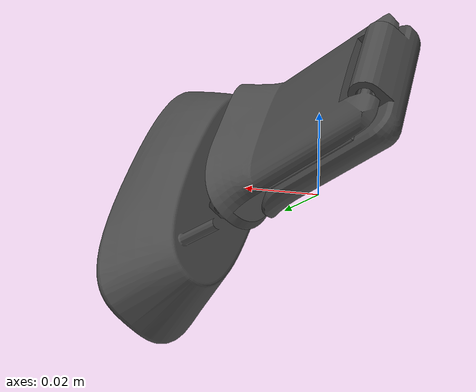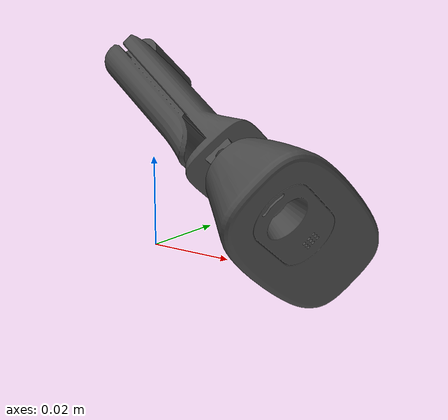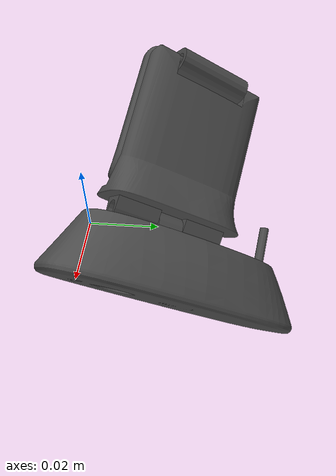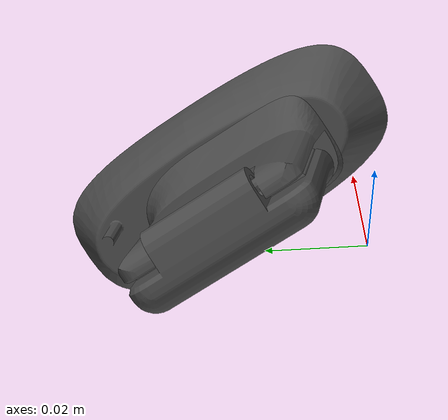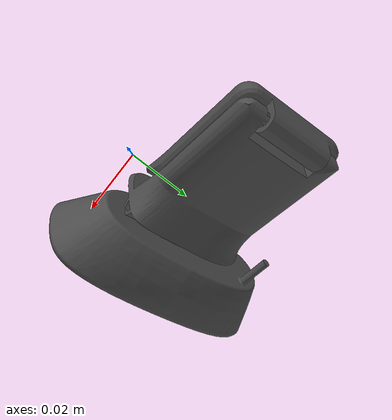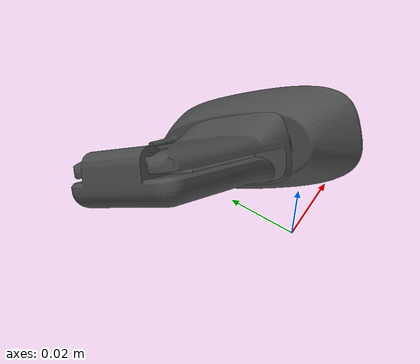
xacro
<?xml version="1.0"?>
<robot xmlns:xacro="http://ros.org/wiki/xacro" name="logitech_c270_assemblyy">
  <link name="world_link"/>
	<joint name="world_to_base_link=" type="fixed">
		<parent link="world_link"/>
		<child link="base_link"/>
		<origin xyz="0.0 0.0 0.0" rpy="0.0 0.0 0.0" />
	</joint>
  <link name="base_link">
    <inertial>
      <origin
        xyz="-0.016279 0.023335 -0.02712"
        rpy="0 0 0" />
      <mass
        value="0.0097431" />
      <inertia
        ixx="1.3645E-06"
        ixy="4.2835E-07"
        ixz="-2.9609E-07"
        iyy="1.4844E-06"
        iyz="-2.425E-07"
        izz="1.4134E-06" />
    </inertial>
    <visual>
      <origin
        xyz="0 0 0"
        rpy="0 0 0" />
      <geometry>
        <mesh
          filename="package://logitech_c270_assembly/meshes/base_link.STL" />
      </geometry>
      <material
        name="">
        <color
          rgba="0.29412 0.29412 0.29412 1" />
      </material>
    </visual>
    <collision>
      <origin
        xyz="0 0 0"
        rpy="0 0 0" />
      <geometry>
        <mesh
          filename="package://logitech_c270_assembly/meshes/base_link.STL" />
      </geometry>
    </collision>
  </link>
  <link
    name="link1">
    <inertial>
      <origin
        xyz="-0.00091504 -0.0020508 0.014124"
        rpy="0 0 0" />
      <mass
        value="0.0079195" />
      <inertia
        ixx="1.3076E-06"
        ixy="-1.1299E-09"
        ixz="-1.6351E-08"
        iyy="2.0373E-06"
        iyz="4.1864E-08"
        izz="8.6008E-07" />
    </inertial>
    <visual>
      <origin
        xyz="0 0 0"
        rpy="0 0 0" />
      <geometry>
        <mesh
          filename="package://logitech_c270_assembly/meshes/link1.STL" />
      </geometry>
      <material
        name="">
        <color
          rgba="0.29412 0.29412 0.29412 1" />
      </material>
    </visual>
    <collision>
      <origin
        xyz="0 0 0"
        rpy="0 0 0" />
      <geometry>
        <mesh
          filename="package://logitech_c270_assembly/meshes/link1.STL" />
      </geometry>
    </collision>
  </link>
  <joint
    name="joint1"
    type="fixed">
    <origin
      xyz="0.006804 0.024772 0.012268"
      rpy="-0.92026 0.55846 1.7324" />
    <parent
      link="base_link" />
    <child
      link="link1" />
    <axis
      xyz="0 0 0" />
  </joint>
  <link
    name="camera">
    <inertial>
      <origin
        xyz="0.01676 0.00026642 -0.0075542"
        rpy="0 0 0" />
      <mass
        value="0.027972" />
      <inertia
        ixx="2.205E-06"
        ixy="-3.8368E-09"
        ixz="-3.3974E-08"
        iyy="9.1182E-06"
        iyz="1.5946E-08"
        izz="1.0002E-05" />
    </inertial>
    <visual>
      <origin
        xyz="0 0 0"
        rpy="0 0 0" />
      <geometry>
        <mesh
          filename="package://logitech_c270_assembly/meshes/camera.STL" />
      </geometry>
      <material
        name="">
        <color
          rgba="0.29412 0.29412 0.29412 1" />
      </material>
    </visual>
    <collision>
      <origin
        xyz="0 0 0"
        rpy="0 0 0" />
      <geometry>
        <mesh
          filename="package://logitech_c270_assembly/meshes/camera.STL" />
      </geometry>
    </collision>
  </link>
  <joint
    name="joint2"
    type="fixed">
    <origin
      xyz="0.027468 0.011808 0.0076181"
      rpy="2.1581 0.55846 1.7324" />
    <parent
      link="base_link" />
    <child
      link="camera" />
    <axis
      xyz="1 0 0" />
  </joint>
</robot>
